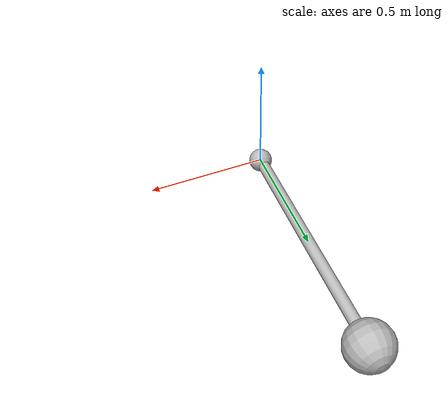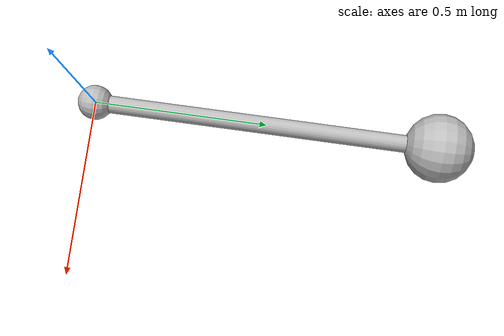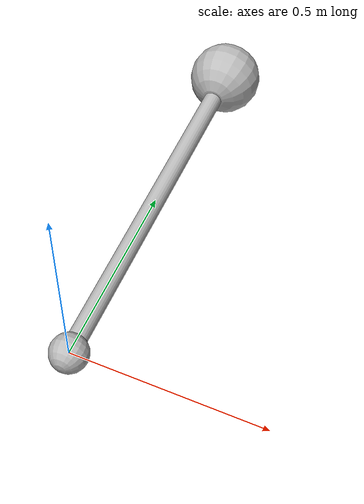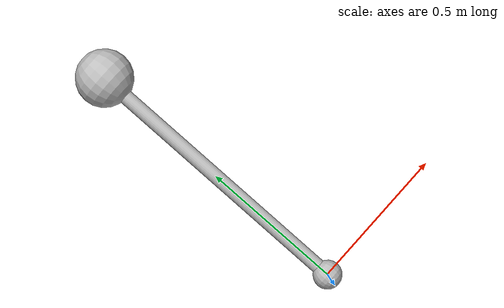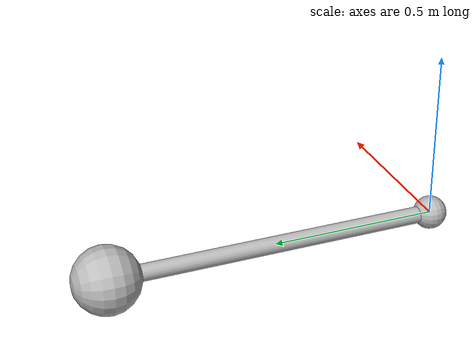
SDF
<?xml version="1.0" ?>
<sdf version="1.5">
  <world name="pendulum-scenario">
    <physics type="ode">
      <max_step_size>0.001</max_step_size>
      <real_time_factor>1</real_time_factor>
      <real_time_update_rate>1000</real_time_update_rate>
      <max_contacts>20</max_contacts>
      <simbody>
        <min_step_size>0.0001</min_step_size>
        <accuracy>0.001</accuracy>
        <max_transient_velocity>0.01</max_transient_velocity>
        <contact>
          <stiffness>1e8</stiffness>
          <dissipation>100</dissipation>
          <plastic_coef_restitution>0.5</plastic_coef_restitution>
          <plastic_impact_velocity>0.5</plastic_impact_velocity>
          <static_friction>100</static_friction>
          <dynamic_friction>100</dynamic_friction>
          <viscous_friction>0</viscous_friction>
          <override_impact_capture_velocity>0.001</override_impact_capture_velocity>
          <override_stiction_transition_velocity>0.001</override_stiction_transition_velocity>
        </contact>
      </simbody>
      <bullet>
        <solver>
          <type>sequential_impulse</type>
          <min_step_size>0.0001</min_step_size>
          <iters>50</iters>
          <sor>1.3</sor>
        </solver>
        <constraints>
          <cfm>0.0</cfm>
          <erp>0.2</erp>
          <contact_surface_layer>0.001</contact_surface_layer>
          <split_impulse>1</split_impulse>
          <split_impulse_penetration_threshold>-0.01</split_impulse_penetration_threshold>
        </constraints>
      </bullet>
      <ode>
        <solver>
          <type>quick</type>
          <min_step_size>0.0001</min_step_size>
          <iters>500</iters>
          <sor>1.0</sor>
        </solver>
        <constraints>
          <cfm>0.0</cfm>
          <erp>0.2</erp>
          <contact_max_correcting_vel>100</contact_max_correcting_vel>
          <contact_surface_layer>0.001</contact_surface_layer>
        </constraints>
      </ode>
    </physics>
    <include>
      <uri>model://sun</uri>
    </include>
    <include>
      <uri>model://reveal_pendulum</uri>
      <pose>0 0 0 1.57079632679 0 0</pose>
      <plugin name='controller' filename='libgz-plugin.so'/>
    </include>
    <gui>
      <camera name='user_camera'>
        <pose>2.40589 1.41487 2.42008 -1.63904e-18 0.551643 -2.54699</pose>
        <view_controller>orbit</view_controller>
      </camera>
    </gui>
    <plugin name="world-plugin" filename="libreveal-gz-monitor.so">
      <models>pendulum</models>
    </plugin>
  </world>
</sdf>

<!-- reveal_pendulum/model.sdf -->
<sdf version='1.5'>
  <model name='pendulum'>
    <link name='base_link'>
      <visual name='base_link_visual'>
        <pose>0 0 0 0 0 0</pose>
        <geometry>
          <sphere>
            <radius>0.05</radius>
          </sphere>
        </geometry>
      </visual>
    </link>
    <link name='arm_link'>
      <pose>0 0 0 0 0 0</pose>
      <visual name='arm_link_visual'>
        <pose>0 0 -0.5 0 0 0</pose>
        <geometry>
          <cylinder>
            <radius>0.025</radius>
            <length>1.0</length>
          </cylinder>
        </geometry>
      </visual>
    </link>
    <joint name='pivot_joint' type='revolute'>
      <child>arm_link</child>
      <parent>base_link</parent>
      <axis>
        <xyz>1 0 0</xyz>
        <limit>
          <lower>-6.28319</lower>
          <upper>6.28319</upper>
        </limit>
        <use_parent_model_frame>1</use_parent_model_frame>
      </axis>
    </joint>
    <link name='bob_link'>
      <pose>0 0 -1.0 0 0 0</pose>
      <inertial>
        <pose>0 0 0 0 0 0</pose>
        <mass>0.1</mass>
        <inertia>
          <ixx>0.0004</ixx>
          <ixy>0</ixy>
          <ixz>0</ixz>
          <iyy>0.0004</iyy>
          <iyz>0</iyz>
          <izz>0.0004</izz>
        </inertia>
      </inertial>
      <visual name='bob_link_visual'>
        <pose>0 0 0 0 0 0</pose>
        <geometry>
          <sphere>
            <radius>0.1</radius>
          </sphere>
        </geometry>
      </visual>
    </link>
    <joint name='arm_bob_weld' type='revolute'>
      <child>bob_link</child>
      <parent>arm_link</parent>
      <axis>
        <xyz>0 1 0</xyz>
        <limit>
          <lower>0</lower>
          <upper>0</upper>
        </limit>
        <use_parent_model_frame>1</use_parent_model_frame>
      </axis>
    </joint>
    <joint name='world_base_weld' type='revolute'>
      <child>base_link</child>
      <parent>world</parent>
      <axis>
        <xyz>0 0 1</xyz>
        <limit>
          <lower>0</lower>
          <upper>0</upper>
        </limit>
      </axis>
    </joint>
  </model>
</sdf>
